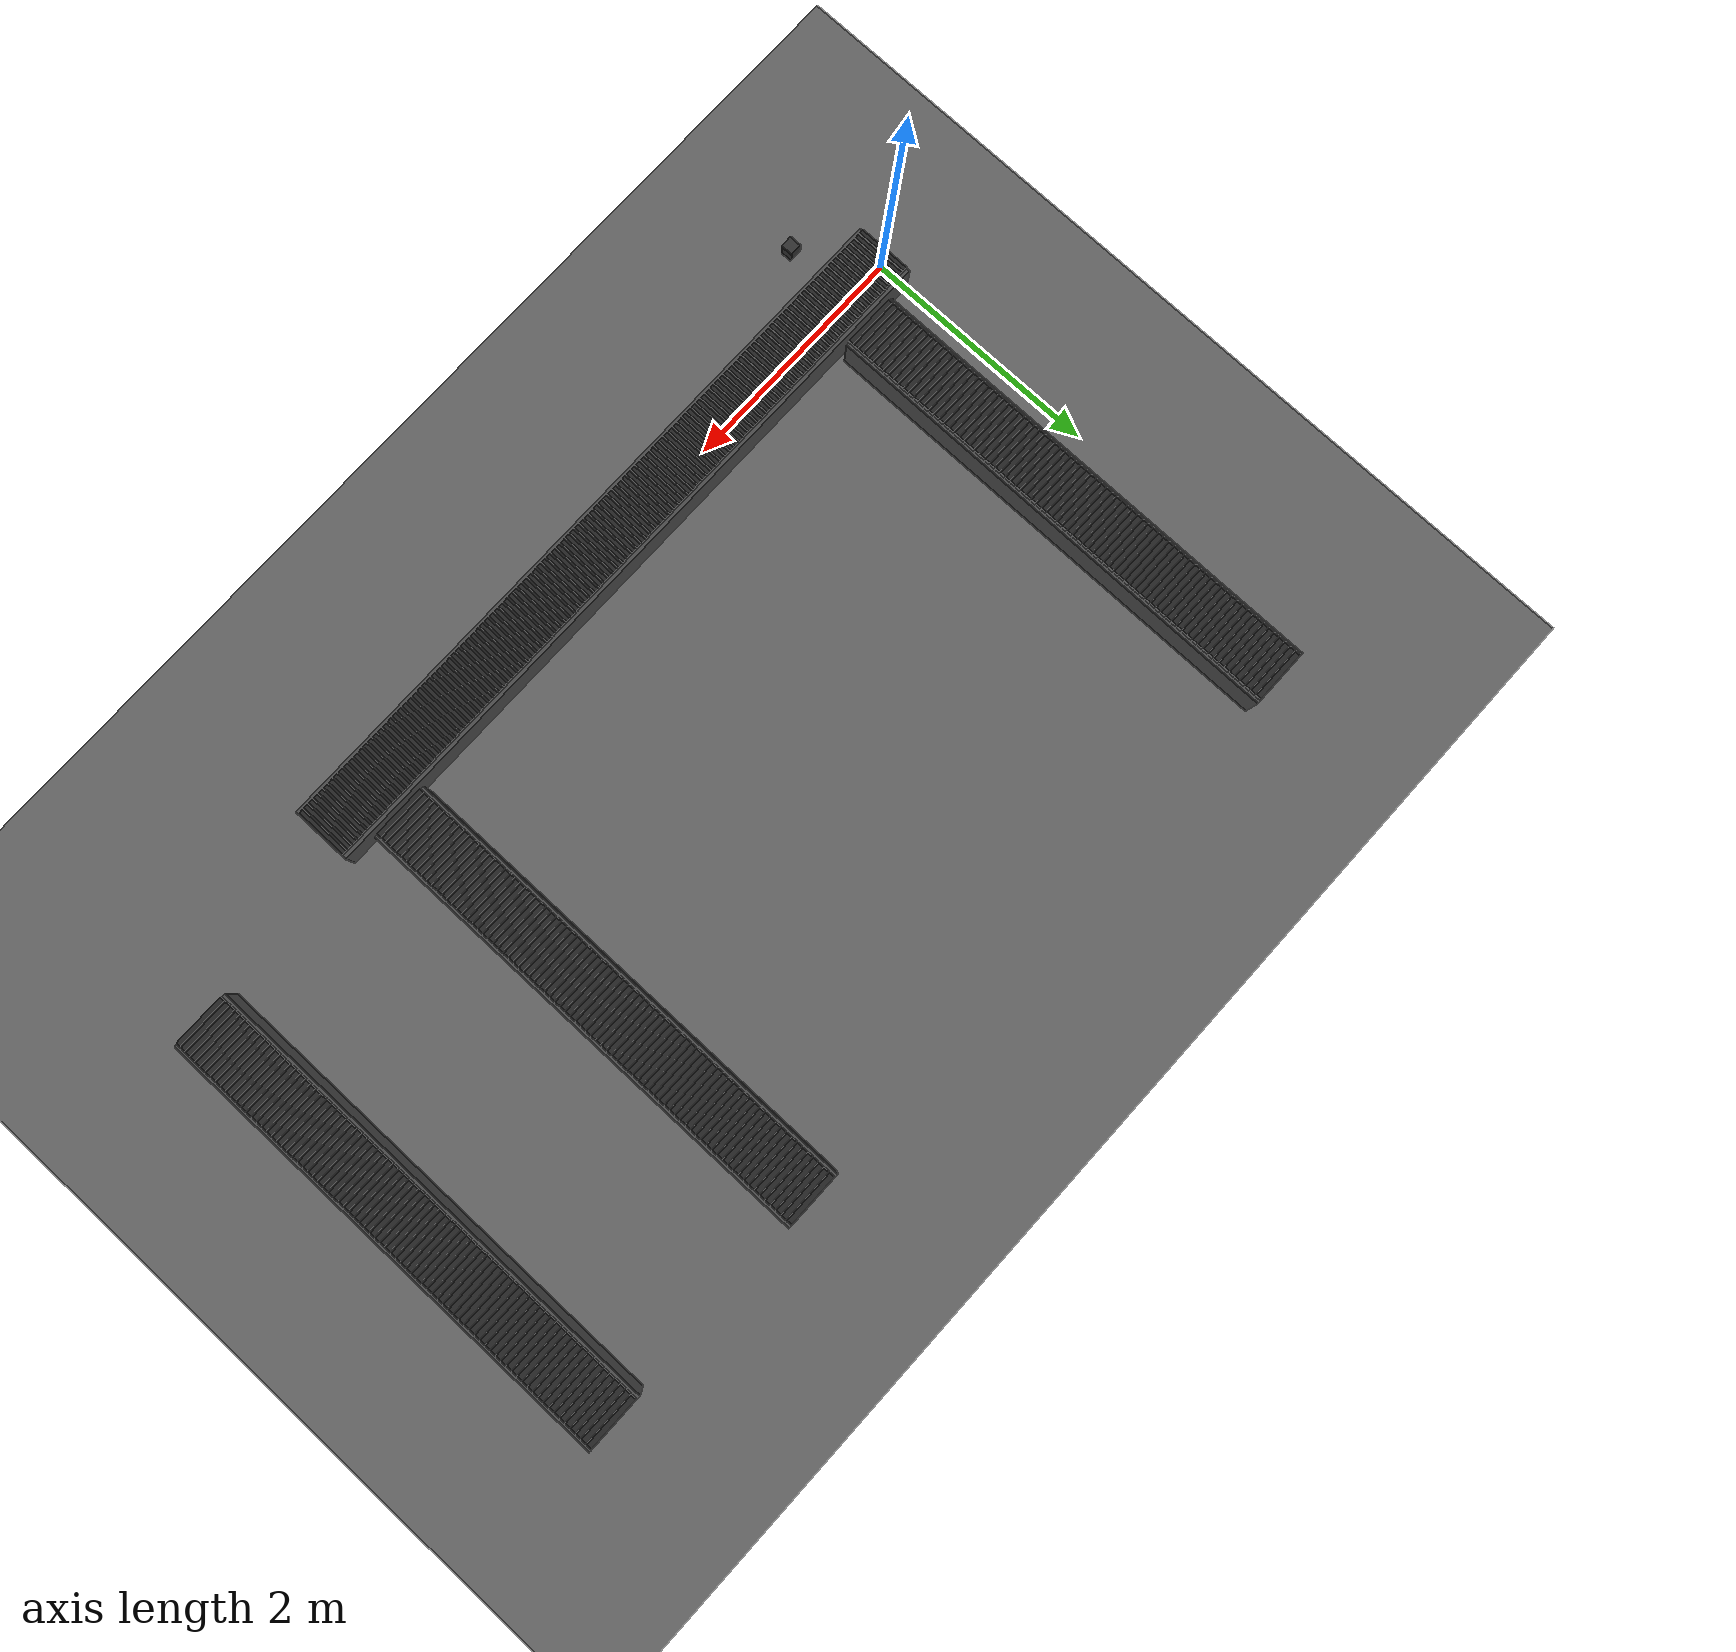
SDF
<sdf version="1.8">
 <world name="conveyor">
  <plugin filename="ignition-gazebo-physics-system" name="ignition::gazebo::systems::Physics"/>
  <plugin filename="ignition-gazebo-user-commands-system" name="ignition::gazebo::systems::UserCommands"/>
  <plugin filename="ignition-gazebo-scene-broadcaster-system" name="ignition::gazebo::systems::SceneBroadcaster"/>
  <plugin filename="ignition-gazebo-sensors-system" name="ignition::gazebo::systems::Sensors">
   <render_engine>ogre2</render_engine>
  </plugin>
  <physics name="default" type="ignored">
   <max_step_size>0.002</max_step_size>
   <real_time_factor>1.0</real_time_factor>
  </physics>
  <light type="directional" name="sun">
   <pose>0 0 10 0 0 0</pose>
   <diffuse>0.9 0.9 0.9 1</diffuse>
   <specular>0.3 0.3 0.3 1</specular>
   <direction>-0.5 0.1 -0.9</direction>
   <attenuation>
    <range>1000</range>
    <constant>0.9</constant>
    <linear>0.01</linear>
    <quadratic>0.001</quadratic>
   </attenuation>
  </light>
  <model name="ground_plane">
   <static>true</static>
   <link name="link">
    <collision name="col">
     <geometry><plane><normal>0 0 1</normal><size>50 50</size></plane></geometry>
     <surface><friction><ode><mu>1</mu><mu2>1</mu2></ode></friction></surface>
    </collision>
    <visual name="vis">
     <geometry><plane><normal>0 0 1</normal><size>50 50</size></plane></geometry>
     <material><ambient>0.4 0.4 0.4 1</ambient><diffuse>0.4 0.4 0.4 1</diffuse></material>
    </visual>
   </link>
  </model>
  <model name="overhead_camera">
   <static>true</static>
   <pose>0.5 -0.5 0.35 0 0 1.5708</pose>
   <link name="camera_link">
    <visual name="visual">
     <geometry><box><size>0.1 0.1 0.1</size></box></geometry>
     <material><ambient>0.2 0.2 0.2 1</ambient><diffuse>0.2 0.2 0.2 1</diffuse></material>
    </visual>
    <sensor name="overhead_cam" type="camera">
     <camera>
      <horizontal_fov>1.047</horizontal_fov>
      <image><width>1280</width><height>720</height><format>R8G8B8</format></image>
      <clip><near>0.1</near><far>10</far></clip>
     </camera>
     <always_on>1</always_on>
     <update_rate>30</update_rate>
     <visualize>true</visualize>
     <topic>/overhead_camera/image_raw</topic>
    </sensor>
   </link>
  </model>
  <model name="conveyor_belt_1">
   <include merge="true"><uri>package://sml_description/models/conveyor_belt_1</uri></include>
  </model>
  <model name="conveyor_belt_2">
   <include merge="true"><uri>package://sml_description/models/conveyor_belt_2</uri></include>
  </model>
  <model name="conveyor_belt_3">
   <pose>5.0 0 0 0 0 0</pose>
   <include merge="true"><uri>package://sml_description/models/conveyor_belt_3</uri></include>
  </model>
  <model name="conveyor_belt_4">
   <pose>7.0 0 0 0 0 0</pose>
   <include merge="true"><uri>package://sml_description/models/conveyor_belt_4</uri></include>
  </model>
 </world>
</sdf>

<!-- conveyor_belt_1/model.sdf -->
<sdf version="1.8">
  <model name="conveyor_belt">
    <!--
      InfiniteConveyor plugin — drives all slat joints and wraps them.
      Adjust belt_speed (m/s) to change conveyor speed.
    -->
    <plugin filename="InfiniteConveyorPlugin" name="conveyor::InfiniteConveyor">
      <belt_speed>-0.2</belt_speed>
      <end_x>4.32</end_x>
      <num_slats>80</num_slats>
      <slat_pitch>0.05</slat_pitch>
      <first_slat_x>0.31</first_slat_x>
      <slat_prefix>slat2</slat_prefix>
      <coordinate>y</coordinate>
      <cmd_vel_topic>/conveyor2/cmd_vel</cmd_vel_topic>
    </plugin>
      <model name="conveyor_frame_2">
    <self_collide>true</self_collide>
    <pose>0.5 0.29 0 0 0 1.5708</pose>
    <include merge="true">
      <uri>package://sml_description/models/conveyor_frame_4m</uri>
    </include>
  </model>
    <!-- Slat Models (using modular include) -->
    <model name="slat2_0">
      <pose>0.5 0.31 0.29 0 0 1.5708</pose>
      <include merge="true"><uri>package://sml_description/models/slat</uri></include>
      <joint name="slat2_0_joint" type="prismatic"><parent>world</parent><child>link</child><axis><xyz>1 0 0</xyz></axis></joint>
    </model>
    <model name="slat2_1">
      <pose>0.5 0.36 0.29 0 0 1.5708</pose>
      <include merge="true"><uri>package://sml_description/models/slat</uri></include>
      <joint name="slat2_1_joint" type="prismatic"><parent>world</parent><child>link</child><axis><xyz>1 0 0</xyz></axis></joint>
    </model>
    <model name="slat2_2">
      <pose>0.5 0.41 0.29 0 0 1.5708</pose>
      <include merge="true"><uri>package://sml_description/models/slat</uri></include>
      <joint name="slat2_2_joint" type="prismatic"><parent>world</parent><child>link</child><axis><xyz>1 0 0</xyz></axis></joint>
    </model>
    <model name="slat2_3">
      <pose>0.5 0.46 0.29 0 0 1.5708</pose>
      <include merge="true"><uri>package://sml_description/models/slat</uri></include>
      <joint name="slat2_3_joint" type="prismatic"><parent>world</parent><child>link</child><axis><xyz>1 0 0</xyz></axis></joint>
    </model>
    <model name="slat2_4">
      <pose>0.5 0.51 0.29 0 0 1.5708</pose>
      <include merge="true"><uri>package://sml_description/models/slat</uri></include>
      <joint name="slat2_4_joint" type="prismatic"><parent>world</parent><child>link</child><axis><xyz>1 0 0</xyz></axis></joint>
    </model>
    <model name="slat2_5">
      <pose>0.5 0.56 0.29 0 0 1.5708</pose>
      <include merge="true"><uri>package://sml_description/models/slat</uri></include>
      <joint name="slat2_5_joint" type="prismatic"><parent>world</parent><child>link</child><axis><xyz>1 0 0</xyz></axis></joint>
    </model>
    <model name="slat2_6">
      <pose>0.5 0.61 0.29 0 0 1.5708</pose>
      <include merge="true"><uri>package://sml_description/models/slat</uri></include>
      <joint name="slat2_6_joint" type="prismatic"><parent>world</parent><child>link</child><axis><xyz>1 0 0</xyz></axis></joint>
    </model>
    <model name="slat2_7">
      <pose>0.5 0.66 0.29 0 0 1.5708</pose>
      <include merge="true"><uri>package://sml_description/models/slat</uri></include>
      <joint name="slat2_7_joint" type="prismatic"><parent>world</parent><child>link</child><axis><xyz>1 0 0</xyz></axis></joint>
    </model>
    <model name="slat2_8">
      <pose>0.5 0.71 0.29 0 0 1.5708</pose>
      <include merge="true"><uri>package://sml_description/models/slat</uri></include>
      <joint name="slat2_8_joint" type="prismatic"><parent>world</parent><child>link</child><axis><xyz>1 0 0</xyz></axis></joint>
    </model>
    <model name="slat2_9">
      <pose>0.5 0.76 0.29 0 0 1.5708</pose>
      <include merge="true"><uri>package://sml_description/models/slat</uri></include>
      <joint name="slat2_9_joint" type="prismatic"><parent>world</parent><child>link</child><axis><xyz>1 0 0</xyz></axis></joint>
    </model>
    <model name="slat2_10">
      <pose>0.5 0.81 0.29 0 0 1.5708</pose>
      <include merge="true"><uri>package://sml_description/models/slat</uri></include>
      <joint name="slat2_10_joint" type="prismatic"><parent>world</parent><child>link</child><axis><xyz>1 0 0</xyz></axis></joint>
    </model>
    <model name="slat2_11">
      <pose>0.5 0.86 0.29 0 0 1.5708</pose>
      <include merge="true"><uri>package://sml_description/models/slat</uri></include>
      <joint name="slat2_11_joint" type="prismatic"><parent>world</parent><child>link</child><axis><xyz>1 0 0</xyz></axis></joint>
    </model>
    <model name="slat2_12">
      <pose>0.5 0.91 0.29 0 0 1.5708</pose>
      <include merge="true"><uri>package://sml_description/models/slat</uri></include>
      <joint name="slat2_12_joint" type="prismatic"><parent>world</parent><child>link</child><axis><xyz>1 0 0</xyz></axis></joint>
    </model>
    <model name="slat2_13">
      <pose>0.5 0.96 0.29 0 0 1.5708</pose>
      <include merge="true"><uri>package://sml_description/models/slat</uri></include>
      <joint name="slat2_13_joint" type="prismatic"><parent>world</parent><child>link</child><axis><xyz>1 0 0</xyz></axis></joint>
    </model>
    <model name="slat2_14">
      <pose>0.5 1.01 0.29 0 0 1.5708</pose>
      <include merge="true"><uri>package://sml_description/models/slat</uri></include>
      <joint name="slat2_14_joint" type="prismatic"><parent>world</parent><child>link</child><axis><xyz>1 0 0</xyz></axis></joint>
    </model>
    <model name="slat2_15">
      <pose>0.5 1.06 0.29 0 0 1.5708</pose>
      <include merge="true"><uri>package://sml_description/models/slat</uri></include>
      <joint name="slat2_15_joint" type="prismatic"><parent>world</parent><child>link</child><axis><xyz>1 0 0</xyz></axis></joint>
    </model>
    <model name="slat2_16">
      <pose>0.5 1.11 0.29 0 0 1.5708</pose>
      <include merge="true"><uri>package://sml_description/models/slat</uri></include>
      <joint name="slat2_16_joint" type="prismatic"><parent>world</parent><child>link</child><axis><xyz>1 0 0</xyz></axis></joint>
    </model>
    <model name="slat2_17">
      <pose>0.5 1.16 0.29 0 0 1.5708</pose>
      <include merge="true"><uri>package://sml_description/models/slat</uri></include>
      <joint name="slat2_17_joint" type="prismatic"><parent>world</parent><child>link</child><axis><xyz>1 0 0</xyz></axis></joint>
    </model>
    <model name="slat2_18">
      <pose>0.5 1.21 0.29 0 0 1.5708</pose>
      <include merge="true"><uri>package://sml_description/models/slat</uri></include>
      <joint name="slat2_18_joint" type="prismatic"><parent>world</parent><child>link</child><axis><xyz>1 0 0</xyz></axis></joint>
    </model>
    <model name="slat2_19">
      <pose>0.5 1.26 0.29 0 0 1.5708</pose>
      <include merge="true"><uri>package://sml_description/models/slat</uri></include>
      <joint name="slat2_19_joint" type="prismatic"><parent>world</parent><child>link</child><axis><xyz>1 0 0</xyz></axis></joint>
    </model>
    <model name="slat2_20">
      <pose>0.5 1.31 0.29 0 0 1.5708</pose>
      <include merge="true"><uri>package://sml_description/models/slat</uri></include>
      <joint name="slat2_20_joint" type="prismatic"><parent>world</parent><child>link</child><axis><xyz>1 0 0</xyz></axis></joint>
    </model>
    <model name="slat2_21">
      <pose>0.5 1.36 0.29 0 0 1.5708</pose>
      <include merge="true"><uri>package://sml_description/models/slat</uri></include>
      <joint name="slat2_21_joint" type="prismatic"><parent>world</parent><child>link</child><axis><xyz>1 0 0</xyz></axis></joint>
    </model>
    <model name="slat2_22">
      <pose>0.5 1.41 0.29 0 0 1.5708</pose>
      <include merge="true"><uri>package://sml_description/models/slat</uri></include>
      <joint name="slat2_22_joint" type="prismatic"><parent>world</parent><child>link</child><axis><xyz>1 0 0</xyz></axis></joint>
    </model>
    <model name="slat2_23">
      <pose>0.5 1.46 0.29 0 0 1.5708</pose>
      <include merge="true"><uri>package://sml_description/models/slat</uri></include>
      <joint name="slat2_23_joint" type="prismatic"><parent>world</parent><child>link</child><axis><xyz>1 0 0</xyz></axis></joint>
    </model>
    <model name="slat2_24">
      <pose>0.5 1.51 0.29 0 0 1.5708</pose>
      <include merge="true"><uri>package://sml_description/models/slat</uri></include>
      <joint name="slat2_24_joint" type="prismatic"><parent>world</parent><child>link</child><axis><xyz>1 0 0</xyz></axis></joint>
    </model>
    <model name="slat2_25">
      <pose>0.5 1.56 0.29 0 0 1.5708</pose>
      <include merge="true"><uri>package://sml_description/models/slat</uri></include>
      <joint name="slat2_25_joint" type="prismatic"><parent>world</parent><child>link</child><axis><xyz>1 0 0</xyz></axis></joint>
    </model>
    <model name="slat2_26">
      <pose>0.5 1.61 0.29 0 0 1.5708</pose>
      <include merge="true"><uri>package://sml_description/models/slat</uri></include>
      <joint name="slat2_26_joint" type="prismatic"><parent>world</parent><child>link</child><axis><xyz>1 0 0</xyz></axis></joint>
    </model>
    <model name="slat2_27">
      <pose>0.5 1.66 0.29 0 0 1.5708</pose>
      <include merge="true"><uri>package://sml_description/models/slat</uri></include>
      <joint name="slat2_27_joint" type="prismatic"><parent>world</parent><child>link</child><axis><xyz>1 0 0</xyz></axis></joint>
    </model>
    <model name="slat2_28">
      <pose>0.5 1.71 0.29 0 0 1.5708</pose>
      <include merge="true"><uri>package://sml_description/models/slat</uri></include>
      <joint name="slat2_28_joint" type="prismatic"><parent>world</parent><child>link</child><axis><xyz>1 0 0</xyz></axis></joint>
    </model>
    <model name="slat2_29">
      <pose>0.5 1.76 0.29 0 0 1.5708</pose>
      <include merge="true"><uri>package://sml_description/models/slat</uri></include>
      <joint name="slat2_29_joint" type="prismatic"><parent>world</parent><child>link</child><axis><xyz>1 0 0</xyz></axis></joint>
    </model>
    <model name="slat2_30">
      <pose>0.5 1.81 0.29 0 0 1.5708</pose>
      <include merge="true"><uri>package://sml_description/models/slat</uri></include>
      <joint name="slat2_30_joint" type="prismatic"><parent>world</parent><child>link</child><axis><xyz>1 0 0</xyz></axis></joint>
    </model>
    <model name="slat2_31">
      <pose>0.5 1.86 0.29 0 0 1.5708</pose>
      <include merge="true"><uri>package://sml_description/models/slat</uri></include>
      <joint name="slat2_31_joint" type="prismatic"><parent>world</parent><child>link</child><axis><xyz>1 0 0</xyz></axis></joint>
    </model>
    <model name="slat2_32">
      <pose>0.5 1.91 0.29 0 0 1.5708</pose>
      <include merge="true"><uri>package://sml_description/models/slat</uri></include>
      <joint name="slat2_32_joint" type="prismatic"><parent>world</parent><child>link</child><axis><xyz>1 0 0</xyz></axis></joint>
    </model>
    <model name="slat2_33">
      <pose>0.5 1.96 0.29 0 0 1.5708</pose>
      <include merge="true"><uri>package://sml_description/models/slat</uri></include>
      <joint name="slat2_33_joint" type="prismatic"><parent>world</parent><child>link</child><axis><xyz>1 0 0</xyz></axis></joint>
    </model>
    <model name="slat2_34">
      <pose>0.5 2.01 0.29 0 0 1.5708</pose>
      <include merge="true"><uri>package://sml_description/models/slat</uri></include>
      <joint name="slat2_34_joint" type="prismatic"><parent>world</parent><child>link</child><axis><xyz>1 0 0</xyz></axis></joint>
    </model>
    <model name="slat2_35">
      <pose>0.5 2.06 0.29 0 0 1.5708</pose>
      <include merge="true"><uri>package://sml_description/models/slat</uri></include>
      <joint name="slat2_35_joint" type="prismatic"><parent>world</parent><child>link</child><axis><xyz>1 0 0</xyz></axis></joint>
    </model>
    <model name="slat2_36">
      <pose>0.5 2.11 0.29 0 0 1.5708</pose>
      <include merge="true"><uri>package://sml_description/models/slat</uri></include>
      <joint name="slat2_36_joint" type="prismatic"><parent>world</parent><child>link</child><axis><xyz>1 0 0</xyz></axis></joint>
    </model>
    <model name="slat2_37">
      <pose>0.5 2.16 0.29 0 0 1.5708</pose>
      <include merge="true"><uri>package://sml_description/models/slat</uri></include>
      <joint name="slat2_37_joint" type="prismatic"><parent>world</parent><child>link</child><axis><xyz>1 0 0</xyz></axis></joint>
    </model>
    <model name="slat2_38">
      <pose>0.5 2.21 0.29 0 0 1.5708</pose>
      <include merge="true"><uri>package://sml_description/models/slat</uri></include>
      <joint name="slat2_38_joint" type="prismatic"><parent>world</parent><child>link</child><axis><xyz>1 0 0</xyz></axis></joint>
    </model>
    <model name="slat2_39">
      <pose>0.5 2.26 0.29 0 0 1.5708</pose>
      <include merge="true"><uri>package://sml_description/models/slat</uri></include>
      <joint name="slat2_39_joint" type="prismatic"><parent>world</parent><child>link</child><axis><xyz>1 0 0</xyz></axis></joint>
    </model>
    <model name="slat2_40">
      <pose>0.5 2.31 0.29 0 0 1.5708</pose>
      <include merge="true"><uri>package://sml_description/models/slat</uri></include>
      <joint name="slat2_40_joint" type="prismatic"><parent>world</parent><child>link</child><axis><xyz>1 0 0</xyz></axis></joint>
    </model>
    <model name="slat2_41">
      <pose>0.5 2.36 0.29 0 0 1.5708</pose>
      <include merge="true"><uri>package://sml_description/models/slat</uri></include>
      <joint name="slat2_41_joint" type="prismatic"><parent>world</parent><child>link</child><axis><xyz>1 0 0</xyz></axis></joint>
    </model>
    <model name="slat2_42">
      <pose>0.5 2.41 0.29 0 0 1.5708</pose>
      <include merge="true"><uri>package://sml_description/models/slat</uri></include>
      <joint name="slat2_42_joint" type="prismatic"><parent>world</parent><child>link</child><axis><xyz>1 0 0</xyz></axis></joint>
    </model>
    <model name="slat2_43">
      <pose>0.5 2.46 0.29 0 0 1.5708</pose>
      <include merge="true"><uri>package://sml_description/models/slat</uri></include>
      <joint name="slat2_43_joint" type="prismatic"><parent>world</parent><child>link</child><axis><xyz>1 0 0</xyz></axis></joint>
    </model>
    <model name="slat2_44">
      <pose>0.5 2.51 0.29 0 0 1.5708</pose>
      <include merge="true"><uri>package://sml_description/models/slat</uri></include>
      <joint name="slat2_44_joint" type="prismatic"><parent>world</parent><child>link</child><axis><xyz>1 0 0</xyz></axis></joint>
    </model>
    <model name="slat2_45">
      <pose>0.5 2.56 0.29 0 0 1.5708</pose>
      <include merge="true"><uri>package://sml_description/models/slat</uri></include>
      <joint name="slat2_45_joint" type="prismatic"><parent>world</parent><child>link</child><axis><xyz>1 0 0</xyz></axis></joint>
    </model>
    <model name="slat2_46">
      <pose>0.5 2.61 0.29 0 0 1.5708</pose>
      <include merge="true"><uri>package://sml_description/models/slat</uri></include>
      <joint name="slat2_46_joint" type="prismatic"><parent>world</parent><child>link</child><axis><xyz>1 0 0</xyz></axis></joint>
    </model>
    <model name="slat2_47">
      <pose>0.5 2.66 0.29 0 0 1.5708</pose>
      <include merge="true"><uri>package://sml_description/models/slat</uri></include>
      <joint name="slat2_47_joint" type="prismatic"><parent>world</parent><child>link</child><axis><xyz>1 0 0</xyz></axis></joint>
    </model>
    <model name="slat2_48">
      <pose>0.5 2.71 0.29 0 0 1.5708</pose>
      <include merge="true"><uri>package://sml_description/models/slat</uri></include>
      <joint name="slat2_48_joint" type="prismatic"><parent>world</parent><child>link</child><axis><xyz>1 0 0</xyz></axis></joint>
    </model>
    <model name="slat2_49">
      <pose>0.5 2.76 0.29 0 0 1.5708</pose>
      <include merge="true"><uri>package://sml_description/models/slat</uri></include>
      <joint name="slat2_49_joint" type="prismatic"><parent>world</parent><child>link</child><axis><xyz>1 0 0</xyz></axis></joint>
    </model>
    <model name="slat2_50">
      <pose>0.5 2.81 0.29 0 0 1.5708</pose>
      <include merge="true"><uri>package://sml_description/models/slat</uri></include>
      <joint name="slat2_50_joint" type="prismatic"><parent>world</parent><child>link</child><axis><xyz>1 0 0</xyz></axis></joint>
    </model>
    <model name="slat2_51">
      <pose>0.5 2.86 0.29 0 0 1.5708</pose>
      <include merge="true"><uri>package://sml_description/models/slat</uri></include>
      <joint name="slat2_51_joint" type="prismatic"><parent>world</parent><child>link</child><axis><xyz>1 0 0</xyz></axis></joint>
    </model>
    <model name="slat2_52">
      <pose>0.5 2.91 0.29 0 0 1.5708</pose>
      <include merge="true"><uri>package://sml_description/models/slat</uri></include>
      <joint name="slat2_52_joint" type="prismatic"><parent>world</parent><child>link</child><axis><xyz>1 0 0</xyz></axis></joint>
    </model>
    <model name="slat2_53">
      <pose>0.5 2.96 0.29 0 0 1.5708</pose>
      <include merge="true"><uri>package://sml_description/models/slat</uri></include>
      <joint name="slat2_53_joint" type="prismatic"><parent>world</parent><child>link</child><axis><xyz>1 0 0</xyz></axis></joint>
    </model>
    <model name="slat2_54">
      <pose>0.5 3.01 0.29 0 0 1.5708</pose>
      <include merge="true"><uri>package://sml_description/models/slat</uri></include>
      <joint name="slat2_54_joint" type="prismatic"><parent>world</parent><child>link</child><axis><xyz>1 0 0</xyz></axis></joint>
    </model>
    <model name="slat2_55">
      <pose>0.5 3.06 0.29 0 0 1.5708</pose>
      <include merge="true"><uri>package://sml_description/models/slat</uri></include>
      <joint name="slat2_55_joint" type="prismatic"><parent>world</parent><child>link</child><axis><xyz>1 0 0</xyz></axis></joint>
    </model>
    <model name="slat2_56">
      <pose>0.5 3.11 0.29 0 0 1.5708</pose>
      <include merge="true"><uri>package://sml_description/models/slat</uri></include>
      <joint name="slat2_56_joint" type="prismatic"><parent>world</parent><child>link</child><axis><xyz>1 0 0</xyz></axis></joint>
    </model>
    <model name="slat2_57">
      <pose>0.5 3.16 0.29 0 0 1.5708</pose>
      <include merge="true"><uri>package://sml_description/models/slat</uri></include>
      <joint name="slat2_57_joint" type="prismatic"><parent>world</parent><child>link</child><axis><xyz>1 0 0</xyz></axis></joint>
    </model>
    <model name="slat2_58">
      <pose>0.5 3.21 0.29 0 0 1.5708</pose>
      <include merge="true"><uri>package://sml_description/models/slat</uri></include>
      <joint name="slat2_58_joint" type="prismatic"><parent>world</parent><child>link</child><axis><xyz>1 0 0</xyz></axis></joint>
    </model>
    <model name="slat2_59">
      <pose>0.5 3.26 0.29 0 0 1.5708</pose>
      <include merge="true"><uri>package://sml_description/models/slat</uri></include>
      <joint name="slat2_59_joint" type="prismatic"><parent>world</parent><child>link</child><axis><xyz>1 0 0</xyz></axis></joint>
    </model>
    <model name="slat2_60">
      <pose>0.5 3.31 0.29 0 0 1.5708</pose>
      <include merge="true"><uri>package://sml_description/models/slat</uri></include>
      <joint name="slat2_60_joint" type="prismatic"><parent>world</parent><child>link</child><axis><xyz>1 0 0</xyz></axis></joint>
    </model>
    <model name="slat2_61">
      <pose>0.5 3.36 0.29 0 0 1.5708</pose>
      <include merge="true"><uri>package://sml_description/models/slat</uri></include>
      <joint name="slat2_61_joint" type="prismatic"><parent>world</parent><child>link</child><axis><xyz>1 0 0</xyz></axis></joint>
    </model>
    <model name="slat2_62">
      <pose>0.5 3.41 0.29 0 0 1.5708</pose>
      <include merge="true"><uri>package://sml_description/models/slat</uri></include>
      <joint name="slat2_62_joint" type="prismatic"><parent>world</parent><child>link</child><axis><xyz>1 0 0</xyz></axis></joint>
    </model>
    <model name="slat2_63">
      <pose>0.5 3.46 0.29 0 0 1.5708</pose>
      <include merge="true"><uri>package://sml_description/models/slat</uri></include>
      <joint name="slat2_63_joint" type="prismatic"><parent>world</parent><child>link</child><axis><xyz>1 0 0</xyz></axis></joint>
    </model>
    <model name="slat2_64">
      <pose>0.5 3.51 0.29 0 0 1.5708</pose>
      <include merge="true"><uri>package://sml_description/models/slat</uri></include>
      <joint name="slat2_64_joint" type="prismatic"><parent>world</parent><child>link</child><axis><xyz>1 0 0</xyz></axis></joint>
    </model>
    <model name="slat2_65">
      <pose>0.5 3.56 0.29 0 0 1.5708</pose>
      <include merge="true"><uri>package://sml_description/models/slat</uri></include>
      <joint name="slat2_65_joint" type="prismatic"><parent>world</parent><child>link</child><axis><xyz>1 0 0</xyz></axis></joint>
    </model>
    <model name="slat2_66">
      <pose>0.5 3.61 0.29 0 0 1.5708</pose>
      <include merge="true"><uri>package://sml_description/models/slat</uri></include>
      <joint name="slat2_66_joint" type="prismatic"><parent>world</parent><child>link</child><axis><xyz>1 0 0</xyz></axis></joint>
    </model>
    <model name="slat2_67">
      <pose>0.5 3.66 0.29 0 0 1.5708</pose>
      <include merge="true"><uri>package://sml_description/models/slat</uri></include>
      <joint name="slat2_67_joint" type="prismatic"><parent>world</parent><child>link</child><axis><xyz>1 0 0</xyz></axis></joint>
    </model>
    <model name="slat2_68">
      <pose>0.5 3.71 0.29 0 0 1.5708</pose>
      <include merge="true"><uri>package://sml_description/models/slat</uri></include>
      <joint name="slat2_68_joint" type="prismatic"><parent>world</parent><child>link</child><axis><xyz>1 0 0</xyz></axis></joint>
    </model>
    <model name="slat2_69">
      <pose>0.5 3.76 0.29 0 0 1.5708</pose>
      <include merge="true"><uri>package://sml_description/models/slat</uri></include>
      <joint name="slat2_69_joint" type="prismatic"><parent>world</parent><child>link</child><axis><xyz>1 0 0</xyz></axis></joint>
    </model>
    <model name="slat2_70">
      <pose>0.5 3.81 0.29 0 0 1.5708</pose>
      <include merge="true"><uri>package://sml_description/models/slat</uri></include>
      <joint name="slat2_70_joint" type="prismatic"><parent>world</parent><child>link</child><axis><xyz>1 0 0</xyz></axis></joint>
    </model>
    <model name="slat2_71">
      <pose>0.5 3.86 0.29 0 0 1.5708</pose>
      <include merge="true"><uri>package://sml_description/models/slat</uri></include>
      <joint name="slat2_71_joint" type="prismatic"><parent>world</parent><child>link</child><axis><xyz>1 0 0</xyz></axis></joint>
    </model>
    <model name="slat2_72">
      <pose>0.5 3.91 0.29 0 0 1.5708</pose>
      <include merge="true"><uri>package://sml_description/models/slat</uri></include>
      <joint name="slat2_72_joint" type="prismatic"><parent>world</parent><child>link</child><axis><xyz>1 0 0</xyz></axis></joint>
    </model>
    <model name="slat2_73">
      <pose>0.5 3.96 0.29 0 0 1.5708</pose>
      <include merge="true"><uri>package://sml_description/models/slat</uri></include>
      <joint name="slat2_73_joint" type="prismatic"><parent>world</parent><child>link</child><axis><xyz>1 0 0</xyz></axis></joint>
    </model>
    <model name="slat2_74">
      <pose>0.5 4.01 0.29 0 0 1.5708</pose>
      <include merge="true"><uri>package://sml_description/models/slat</uri></include>
      <joint name="slat2_74_joint" type="prismatic"><parent>world</parent><child>link</child><axis><xyz>1 0 0</xyz></axis></joint>
    </model>
    <model name="slat2_75">
      <pose>0.5 4.06 0.29 0 0 1.5708</pose>
      <include merge="true"><uri>package://sml_description/models/slat</uri></include>
      <joint name="slat2_75_joint" type="prismatic"><parent>world</parent><child>link</child><axis><xyz>1 0 0</xyz></axis></joint>
    </model>
    <model name="slat2_76">
      <pose>0.5 4.11 0.29 0 0 1.5708</pose>
      <include merge="true"><uri>package://sml_description/models/slat</uri></include>
      <joint name="slat2_76_joint" type="prismatic"><parent>world</parent><child>link</child><axis><xyz>1 0 0</xyz></axis></joint>
    </model>
    <model name="slat2_77">
      <pose>0.5 4.16 0.29 0 0 1.5708</pose>
      <include merge="true"><uri>package://sml_description/models/slat</uri></include>
      <joint name="slat2_77_joint" type="prismatic"><parent>world</parent><child>link</child><axis><xyz>1 0 0</xyz></axis></joint>
    </model>
    <model name="slat2_78">
      <pose>0.5 4.21 0.29 0 0 1.5708</pose>
      <include merge="true"><uri>package://sml_description/models/slat</uri></include>
      <joint name="slat2_78_joint" type="prismatic"><parent>world</parent><child>link</child><axis><xyz>1 0 0</xyz></axis></joint>
    </model>
    <model name="slat2_79">
      <pose>0.5 4.26 0.29 0 0 1.5708</pose>
      <include merge="true"><uri>package://sml_description/models/slat</uri></include>
      <joint name="slat2_79_joint" type="prismatic"><parent>world</parent><child>link</child><axis><xyz>1 0 0</xyz></axis></joint>
    </model>
  </model>
</sdf>

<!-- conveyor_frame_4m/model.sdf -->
<sdf version="1.8">
<model name="conveyor_frame_4m">
    <static>true</static>
    <pose>2.0 0 0.14 0 0 0</pose>
    <link name="link">
      <inertial><mass>400000</mass>
        <inertia><ixx>4e6</ixx><ixy>0</ixy><ixz>0</ixz>
                 <iyy>4e6</iyy><iyz>0</iyz><izz>4e6</izz></inertia>
      </inertial>

      <!-- Main body (4.0m long) -->
      <collision name="frame_col">
        <geometry><box><size>4.0 0.5 0.28</size></box></geometry>
      </collision>
      <visual name="frame_vis">
        <geometry><box><size>4.0 0.5 0.28</size></box></geometry>
        <material>
          <ambient>0.28 0.28 0.28 1</ambient>
          <diffuse>0.30 0.30 0.30 1</diffuse>
          <specular>0.5 0.5 0.5 1</specular>
        </material>
      </visual>

      <!-- Legs (every 1m approx) -->
      <visual name="leg_1l"><pose>-1.96  0.21 -0.14 0 0 0</pose>
        <geometry><box><size>0.04 0.04 0.28</size></box></geometry>
        <material><ambient>0.2 0.2 0.2 1</ambient><diffuse>0.2 0.2 0.2 1</diffuse></material></visual>
      <visual name="leg_1r"><pose>-1.96 -0.21 -0.14 0 0 0</pose>
        <geometry><box><size>0.04 0.04 0.28</size></box></geometry>
        <material><ambient>0.2 0.2 0.2 1</ambient><diffuse>0.2 0.2 0.2 1</diffuse></material></visual>

      <visual name="leg_2l"><pose>-1.0   0.21 -0.14 0 0 0</pose>
        <geometry><box><size>0.04 0.04 0.28</size></box></geometry>
        <material><ambient>0.2 0.2 0.2 1</ambient><diffuse>0.2 0.2 0.2 1</diffuse></material></visual>
      <visual name="leg_2r"><pose>-1.0  -0.21 -0.14 0 0 0</pose>
        <geometry><box><size>0.04 0.04 0.28</size></box></geometry>
        <material><ambient>0.2 0.2 0.2 1</ambient><diffuse>0.2 0.2 0.2 1</diffuse></material></visual>

      <visual name="leg_3l"><pose> 0.0   0.21 -0.14 0 0 0</pose>
        <geometry><box><size>0.04 0.04 0.28</size></box></geometry>
        <material><ambient>0.2 0.2 0.2 1</ambient><diffuse>0.2 0.2 0.2 1</diffuse></material></visual>
      <visual name="leg_3r"><pose> 0.0  -0.21 -0.14 0 0 0</pose>
        <geometry><box><size>0.04 0.04 0.28</size></box></geometry>
        <material><ambient>0.2 0.2 0.2 1</ambient><diffuse>0.2 0.2 0.2 1</diffuse></material></visual>

      <visual name="leg_4l"><pose> 1.0   0.21 -0.14 0 0 0</pose>
        <geometry><box><size>0.04 0.04 0.28</size></box></geometry>
        <material><ambient>0.2 0.2 0.2 1</ambient><diffuse>0.2 0.2 0.2 1</diffuse></material></visual>
      <visual name="leg_4r"><pose> 1.0  -0.21 -0.14 0 0 0</pose>
        <geometry><box><size>0.04 0.04 0.28</size></box></geometry>
        <material><ambient>0.2 0.2 0.2 1</ambient><diffuse>0.2 0.2 0.2 1</diffuse></material></visual>

      <visual name="leg_5l"><pose> 1.96  0.21 -0.14 0 0 0</pose>
        <geometry><box><size>0.04 0.04 0.28</size></box></geometry>
        <material><ambient>0.2 0.2 0.2 1</ambient><diffuse>0.2 0.2 0.2 1</diffuse></material></visual>
      <visual name="leg_5r"><pose> 1.96 -0.21 -0.14 0 0 0</pose>
        <geometry><box><size>0.04 0.04 0.28</size></box></geometry>
        <material><ambient>0.2 0.2 0.2 1</ambient><diffuse>0.2 0.2 0.2 1</diffuse></material></visual>

      <!-- Cross beams -->
      <visual name="beam_1"><pose>-1.96 0 -0.10 0 0 0</pose>
        <geometry><box><size>0.04 0.46 0.04</size></box></geometry>
        <material><ambient>0.2 0.2 0.2 1</ambient><diffuse>0.2 0.2 0.2 1</diffuse></material></visual>
      <visual name="beam_2"><pose>-1.0 0 -0.10 0 0 0</pose>
        <geometry><box><size>0.04 0.46 0.04</size></box></geometry>
        <material><ambient>0.2 0.2 0.2 1</ambient><diffuse>0.2 0.2 0.2 1</diffuse></material></visual>
      <visual name="beam_3"><pose>0 0 -0.10 0 0 0</pose>
        <geometry><box><size>0.04 0.46 0.04</size></box></geometry>
        <material><ambient>0.2 0.2 0.2 1</ambient><diffuse>0.2 0.2 0.2 1</diffuse></material></visual>
      <visual name="beam_4"><pose>1.0 0 -0.10 0 0 0</pose>
        <geometry><box><size>0.04 0.46 0.04</size></box></geometry>
        <material><ambient>0.2 0.2 0.2 1</ambient><diffuse>0.2 0.2 0.2 1</diffuse></material></visual>
      <visual name="beam_5"><pose>1.96 0 -0.10 0 0 0</pose>
        <geometry><box><size>0.04 0.46 0.04</size></box></geometry>
        <material><ambient>0.2 0.2 0.2 1</ambient><diffuse>0.2 0.2 0.2 1</diffuse></material></visual>
    </link>
  </model>
</sdf>

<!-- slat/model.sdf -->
<sdf version="1.8">
  <model name="slat">
    <link name="link">
      <inertial>
        <mass>0.3</mass>
        <inertia>
          <ixx>0.004867</ixx>
          <ixy>0</ixy>
          <ixz>0</ixz>
          <iyy>0.000050</iyy>
          <iyz>0</iyz>
          <izz>0.004883</izz>
        </inertia>
      </inertial>

      <collision name="collision">
        <geometry>
          <box>
            <size>0.04 0.44 0.02</size>
          </box>
        </geometry>
        <surface>
          <friction>
            <ode>
              <mu>8.0</mu>
              <mu2>8.0</mu2>
              <fdir1>1 0 0</fdir1>
            </ode>
          </friction>
          <contact>
            <ode>
              <kp>1e6</kp>
              <kd>10</kd>
              <min_depth>0.001</min_depth>
            </ode>
          </contact>
        </surface>
      </collision>

      <visual name="visual">
        <geometry>
          <box>
            <size>0.04 0.44 0.02</size>
          </box>
        </geometry>
        <material>
          <ambient>0.15 0.15 0.15 1</ambient>
          <diffuse>0.15 0.15 0.15 1</diffuse>
          <specular>0.2 0.2 0.2 1</specular>
        </material>
      </visual>
    </link>
  </model>
</sdf>

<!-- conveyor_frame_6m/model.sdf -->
<sdf version="1.8">
<model name="conveyor_frame_6m">
    <static>true</static>
    <pose>3.0 0 0.14 0 0 0</pose>
    <link name="link">
      <inertial><mass>600000</mass>
        <inertia><ixx>6e6</ixx><ixy>0</ixy><ixz>0</ixz>
                 <iyy>6e6</iyy><iyz>0</iyz><izz>6e6</izz></inertia>
      </inertial>

      <!-- Main body (6.0m long) -->
      <collision name="frame_col">
        <geometry><box><size>6.0 0.5 0.28</size></box></geometry>
      </collision>
      <visual name="frame_vis">
        <geometry><box><size>6.0 0.5 0.28</size></box></geometry>
        <material>
          <ambient>0.28 0.28 0.28 1</ambient>
          <diffuse>0.30 0.30 0.30 1</diffuse>
          <specular>0.5 0.5 0.5 1</specular>
        </material>
      </visual>

      <!-- Legs (every 1m) -->
      <visual name="leg_1l"><pose>-2.96  0.21 -0.14 0 0 0</pose>
        <geometry><box><size>0.04 0.04 0.28</size></box></geometry>
        <material><ambient>0.2 0.2 0.2 1</ambient><diffuse>0.2 0.2 0.2 1</diffuse></material></visual>
      <visual name="leg_1r"><pose>-2.96 -0.21 -0.14 0 0 0</pose>
        <geometry><box><size>0.04 0.04 0.28</size></box></geometry>
        <material><ambient>0.2 0.2 0.2 1</ambient><diffuse>0.2 0.2 0.2 1</diffuse></material></visual>

      <visual name="leg_2l"><pose>-2.0   0.21 -0.14 0 0 0</pose>
        <geometry><box><size>0.04 0.04 0.28</size></box></geometry>
        <material><ambient>0.2 0.2 0.2 1</ambient><diffuse>0.2 0.2 0.2 1</diffuse></material></visual>
      <visual name="leg_2r"><pose>-2.0  -0.21 -0.14 0 0 0</pose>
        <geometry><box><size>0.04 0.04 0.28</size></box></geometry>
        <material><ambient>0.2 0.2 0.2 1</ambient><diffuse>0.2 0.2 0.2 1</diffuse></material></visual>

      <visual name="leg_3l"><pose>-1.0   0.21 -0.14 0 0 0</pose>
        <geometry><box><size>0.04 0.04 0.28</size></box></geometry>
        <material><ambient>0.2 0.2 0.2 1</ambient><diffuse>0.2 0.2 0.2 1</diffuse></material></visual>
      <visual name="leg_3r"><pose>-1.0  -0.21 -0.14 0 0 0</pose>
        <geometry><box><size>0.04 0.04 0.28</size></box></geometry>
        <material><ambient>0.2 0.2 0.2 1</ambient><diffuse>0.2 0.2 0.2 1</diffuse></material></visual>

      <visual name="leg_4l"><pose> 0.0   0.21 -0.14 0 0 0</pose>
        <geometry><box><size>0.04 0.04 0.28</size></box></geometry>
        <material><ambient>0.2 0.2 0.2 1</ambient><diffuse>0.2 0.2 0.2 1</diffuse></material></visual>
      <visual name="leg_4r"><pose> 0.0  -0.21 -0.14 0 0 0</pose>
        <geometry><box><size>0.04 0.04 0.28</size></box></geometry>
        <material><ambient>0.2 0.2 0.2 1</ambient><diffuse>0.2 0.2 0.2 1</diffuse></material></visual>

      <visual name="leg_5l"><pose> 1.0   0.21 -0.14 0 0 0</pose>
        <geometry><box><size>0.04 0.04 0.28</size></box></geometry>
        <material><ambient>0.2 0.2 0.2 1</ambient><diffuse>0.2 0.2 0.2 1</diffuse></material></visual>
      <visual name="leg_5r"><pose> 1.0  -0.21 -0.14 0 0 0</pose>
        <geometry><box><size>0.04 0.04 0.28</size></box></geometry>
        <material><ambient>0.2 0.2 0.2 1</ambient><diffuse>0.2 0.2 0.2 1</diffuse></material></visual>

      <visual name="leg_6l"><pose> 2.0   0.21 -0.14 0 0 0</pose>
        <geometry><box><size>0.04 0.04 0.28</size></box></geometry>
        <material><ambient>0.2 0.2 0.2 1</ambient><diffuse>0.2 0.2 0.2 1</diffuse></material></visual>
      <visual name="leg_6r"><pose> 2.0  -0.21 -0.14 0 0 0</pose>
        <geometry><box><size>0.04 0.04 0.28</size></box></geometry>
        <material><ambient>0.2 0.2 0.2 1</ambient><diffuse>0.2 0.2 0.2 1</diffuse></material></visual>

      <visual name="leg_7l"><pose> 2.96  0.21 -0.14 0 0 0</pose>
        <geometry><box><size>0.04 0.04 0.28</size></box></geometry>
        <material><ambient>0.2 0.2 0.2 1</ambient><diffuse>0.2 0.2 0.2 1</diffuse></material></visual>
      <visual name="leg_7r"><pose> 2.96 -0.21 -0.14 0 0 0</pose>
        <geometry><box><size>0.04 0.04 0.28</size></box></geometry>
        <material><ambient>0.2 0.2 0.2 1</ambient><diffuse>0.2 0.2 0.2 1</diffuse></material></visual>

      <!-- Cross beams -->
      <visual name="beam_1"><pose>-2.96 0 -0.10 0 0 0</pose>
        <geometry><box><size>0.04 0.46 0.04</size></box></geometry>
        <material><ambient>0.2 0.2 0.2 1</ambient><diffuse>0.2 0.2 0.2 1</diffuse></material></visual>
      <visual name="beam_2"><pose>-2.0 0 -0.10 0 0 0</pose>
        <geometry><box><size>0.04 0.46 0.04</size></box></geometry>
        <material><ambient>0.2 0.2 0.2 1</ambient><diffuse>0.2 0.2 0.2 1</diffuse></material></visual>
      <visual name="beam_3"><pose>-1.0 0 -0.10 0 0 0</pose>
        <geometry><box><size>0.04 0.46 0.04</size></box></geometry>
        <material><ambient>0.2 0.2 0.2 1</ambient><diffuse>0.2 0.2 0.2 1</diffuse></material></visual>
      <visual name="beam_4"><pose>0 0 -0.10 0 0 0</pose>
        <geometry><box><size>0.04 0.46 0.04</size></box></geometry>
        <material><ambient>0.2 0.2 0.2 1</ambient><diffuse>0.2 0.2 0.2 1</diffuse></material></visual>
      <visual name="beam_5"><pose>1.0 0 -0.10 0 0 0</pose>
        <geometry><box><size>0.04 0.46 0.04</size></box></geometry>
        <material><ambient>0.2 0.2 0.2 1</ambient><diffuse>0.2 0.2 0.2 1</diffuse></material></visual>
      <visual name="beam_6"><pose>2.0 0 -0.10 0 0 0</pose>
        <geometry><box><size>0.04 0.46 0.04</size></box></geometry>
        <material><ambient>0.2 0.2 0.2 1</ambient><diffuse>0.2 0.2 0.2 1</diffuse></material></visual>
      <visual name="beam_7"><pose>2.96 0 -0.10 0 0 0</pose>
        <geometry><box><size>0.04 0.46 0.04</size></box></geometry>
        <material><ambient>0.2 0.2 0.2 1</ambient><diffuse>0.2 0.2 0.2 1</diffuse></material></visual>
    </link>
  </model>
</sdf>
